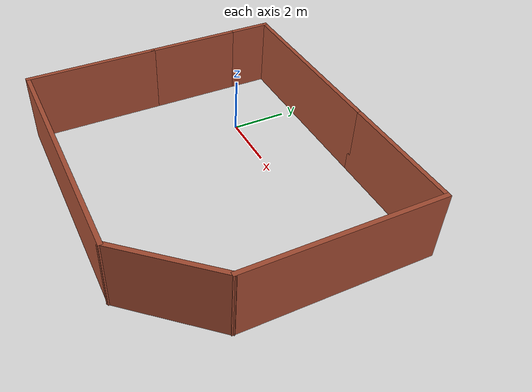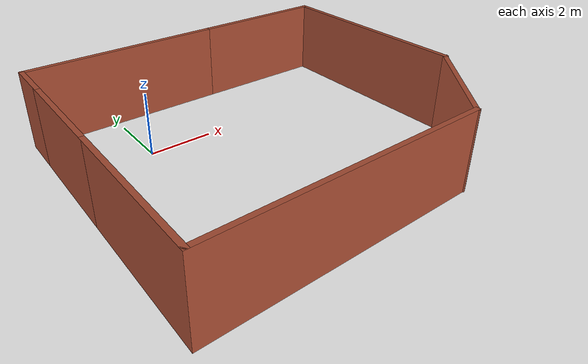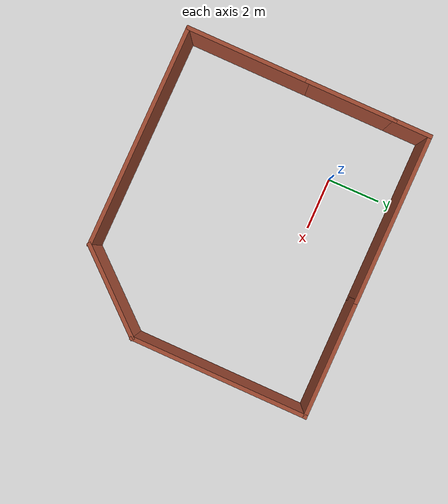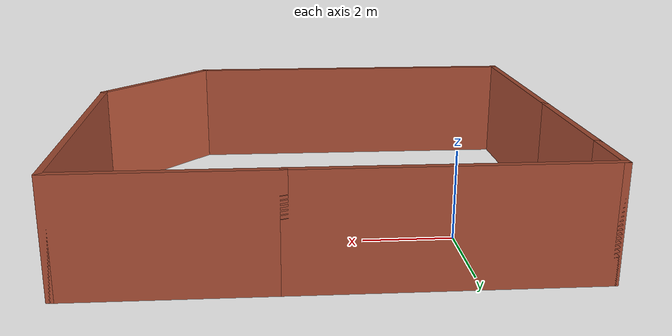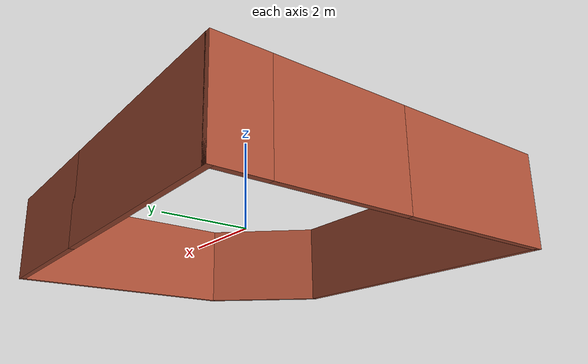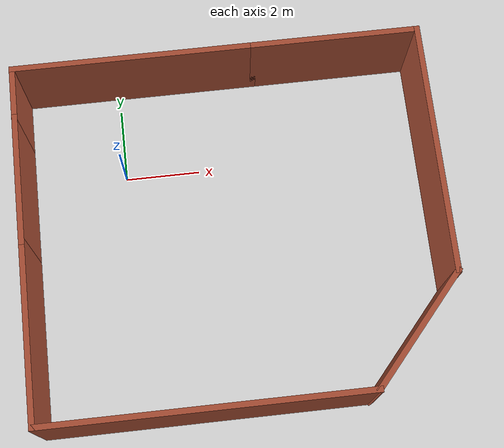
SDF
<?xml version='1.0'?>
<sdf version='1.7'>
  <model name='walls'>
    <pose>2.77949 -2.16917 0 0 -0 0</pose>
    <link name='Wall_10'>
      <collision name='Wall_10_Collision'>
        <geometry>
          <box>
            <size>6.75 0.15 2.5</size>
          </box>
        </geometry>
        <pose>0 0 1.25 0 -0 0</pose>
      </collision>
      <visual name='Wall_10_Visual'>
        <pose>0 0 1.25 0 -0 0</pose>
        <geometry>
          <box>
            <size>6.75 0.15 2.5</size>
          </box>
        </geometry>
        <material>
          <script>
            <uri>file://media/materials/scripts/gazebo.material</uri>
            <name>Gazebo/Bricks</name>
          </script>
          <ambient>1 1 1 1</ambient>
        </material>
        <meta>
          <layer>0</layer>
        </meta>
      </visual>
      <pose>5.33459 1.36541 0 0 -0 -1.5708</pose>
    </link>
    <link name='Wall_19'>
      <collision name='Wall_19_Collision'>
        <geometry>
          <box>
            <size>4.75 0.15 2.5</size>
          </box>
        </geometry>
        <pose>0 0 1.25 0 -0 0</pose>
      </collision>
      <visual name='Wall_19_Visual'>
        <pose>0 0 1.25 0 -0 0</pose>
        <geometry>
          <box>
            <size>4.75 0.15 2.5</size>
          </box>
        </geometry>
        <material>
          <script>
            <uri>file://media/materials/scripts/gazebo.material</uri>
            <name>Gazebo/Bricks</name>
          </script>
          <ambient>1 1 1 1</ambient>
        </material>
        <meta>
          <layer>0</layer>
        </meta>
      </visual>
      <pose>-5.36541 -2.33459 0 0 -0 -1.5708</pose>
    </link>
    <link name='Wall_23'>
      <collision name='Wall_23_Collision'>
        <geometry>
          <box>
            <size>8.5 0.15 2.5</size>
          </box>
        </geometry>
        <pose>0 0 1.25 0 -0 0</pose>
      </collision>
      <visual name='Wall_23_Visual'>
        <pose>0 0 1.25 0 -0 0</pose>
        <geometry>
          <box>
            <size>8.5 0.15 2.5</size>
          </box>
        </geometry>
        <material>
          <script>
            <uri>file://media/materials/scripts/gazebo.material</uri>
            <name>Gazebo/Bricks</name>
          </script>
          <ambient>1 1 1 1</ambient>
        </material>
        <meta>
          <layer>0</layer>
        </meta>
      </visual>
      <pose>-1.19041 -4.6346 0 0 -0 0</pose>
    </link>
    <link name='Wall_26'>
      <collision name='Wall_26_Collision'>
        <geometry>
          <box>
            <size>3.72946 0.15 2.5</size>
          </box>
        </geometry>
        <pose>0 0 1.25 0 -0 0</pose>
      </collision>
      <visual name='Wall_26_Visual'>
        <pose>0 0 1.25 0 -0 0</pose>
        <geometry>
          <box>
            <size>3.72946 0.15 2.5</size>
          </box>
        </geometry>
        <material>
          <script>
            <uri>file://media/materials/scripts/gazebo.material</uri>
            <name>Gazebo/Bricks</name>
          </script>
          <ambient>1 1 1 1</ambient>
        </material>
        <meta>
          <layer>0</layer>
        </meta>
      </visual>
      <pose>4.15959 -3.28459 0 0 -0 0.854594</pose>
    </link>
    <link name='Wall_4'>
      <collision name='Wall_4_Collision'>
        <geometry>
          <box>
            <size>3.5 0.15 2.5</size>
          </box>
        </geometry>
        <pose>0 0 1.25 0 -0 0</pose>
      </collision>
      <visual name='Wall_4_Visual'>
        <pose>0 0 1.25 0 -0 0</pose>
        <geometry>
          <box>
            <size>3.5 0.15 2.5</size>
          </box>
        </geometry>
        <material>
          <script>
            <uri>file://media/materials/scripts/gazebo.material</uri>
            <name>Gazebo/Bricks</name>
          </script>
          <ambient>1 1 1 1</ambient>
        </material>
        <meta>
          <layer>0</layer>
        </meta>
      </visual>
      <pose>-5.36541 1.64041 0 0 -0 1.5708</pose>
    </link>
    <link name='Wall_5'>
      <collision name='Wall_5_Collision'>
        <geometry>
          <box>
            <size>1.5 0.15 2.5</size>
          </box>
        </geometry>
        <pose>0 0 1.25 0 -0 0</pose>
      </collision>
      <visual name='Wall_5_Visual'>
        <pose>0 0 1.25 0 -0 0</pose>
        <geometry>
          <box>
            <size>1.5 0.15 2.5</size>
          </box>
        </geometry>
        <material>
          <script>
            <uri>file://media/materials/scripts/gazebo.material</uri>
            <name>Gazebo/Bricks</name>
          </script>
          <ambient>1 1 1 1</ambient>
        </material>
        <meta>
          <layer>0</layer>
        </meta>
      </visual>
      <pose>-5.36541 3.99041 0 0 -0 1.5708</pose>
    </link>
    <link name='Wall_6'>
      <collision name='Wall_6_Collision'>
        <geometry>
          <box>
            <size>6.5 0.15 2.5</size>
          </box>
        </geometry>
        <pose>0 0 1.25 0 -0 0</pose>
      </collision>
      <visual name='Wall_6_Visual'>
        <pose>0 0 1.25 0 -0 0</pose>
        <geometry>
          <box>
            <size>6.5 0.15 2.5</size>
          </box>
        </geometry>
        <material>
          <script>
            <uri>file://media/materials/scripts/gazebo.material</uri>
            <name>Gazebo/Bricks</name>
          </script>
          <ambient>1 1 1 1</ambient>
        </material>
        <meta>
          <layer>0</layer>
        </meta>
      </visual>
      <pose>-2.19041 4.66541 0 0 -0 0</pose>
    </link>
    <link name='Wall_8'>
      <collision name='Wall_8_Collision'>
        <geometry>
          <box>
            <size>4.5 0.15 2.5</size>
          </box>
        </geometry>
        <pose>0 0 1.25 0 -0 0</pose>
      </collision>
      <visual name='Wall_8_Visual'>
        <pose>0 0 1.25 0 -0 0</pose>
        <geometry>
          <box>
            <size>4.5 0.15 2.5</size>
          </box>
        </geometry>
        <material>
          <script>
            <uri>file://media/materials/scripts/gazebo.material</uri>
            <name>Gazebo/Bricks</name>
          </script>
          <ambient>1 1 1 1</ambient>
        </material>
        <meta>
          <layer>0</layer>
        </meta>
      </visual>
      <pose>3.15959 4.66541 0 0 -0 0</pose>
    </link>
    <static>1</static>
  </model>
</sdf>
